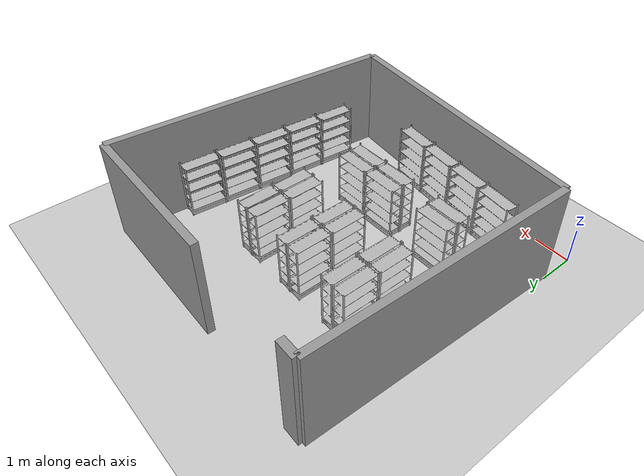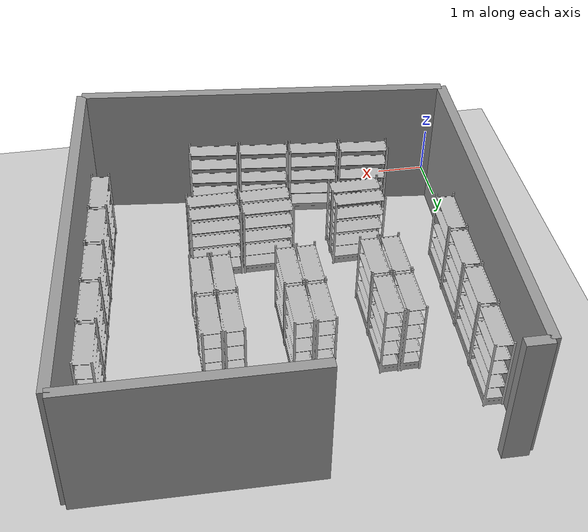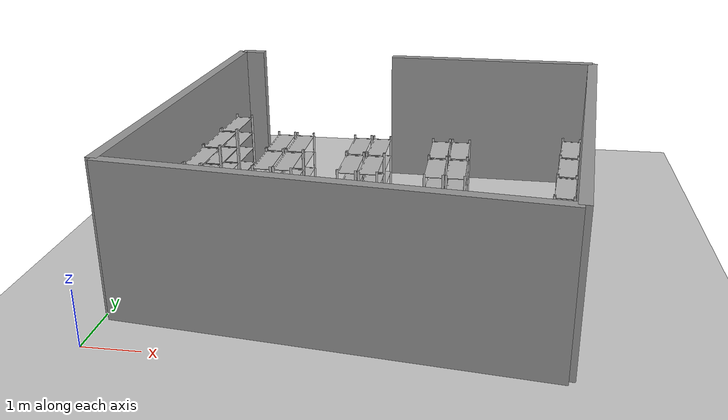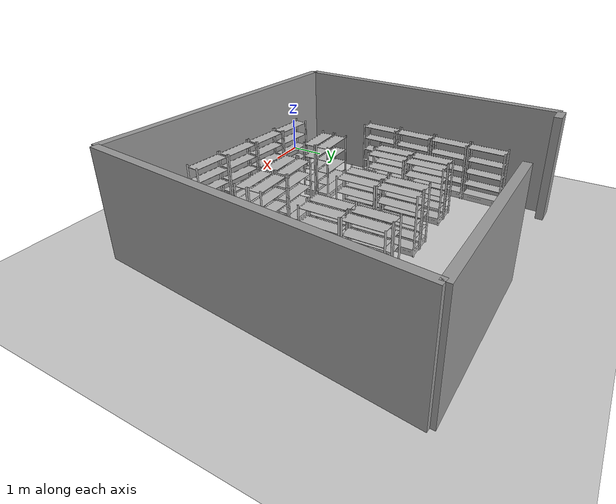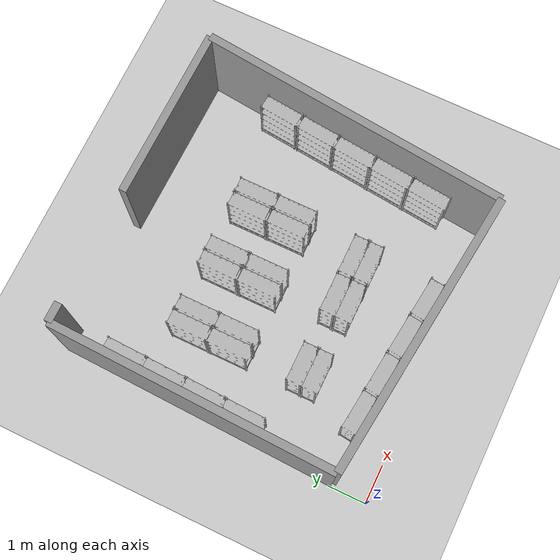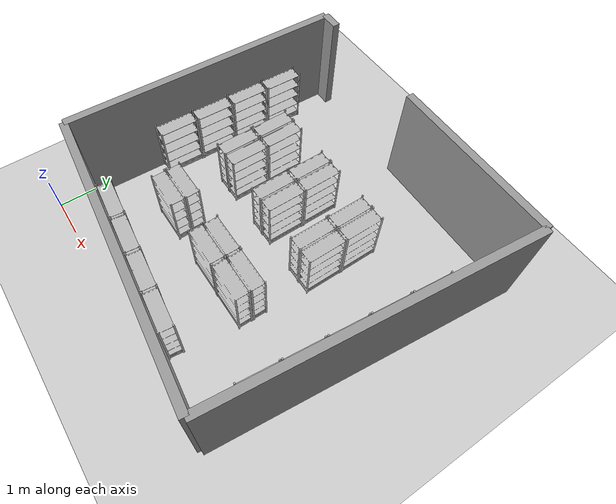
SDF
<sdf version="1.6">
  <world name="default">
    <light name="sun" type="directional">
      <cast_shadows>1</cast_shadows>
      <pose frame="">0 0 10 0 -0 0</pose>
      <diffuse>0.8 0.8 0.8 1</diffuse>
      <specular>0.2 0.2 0.2 1</specular>
      <attenuation>
        <range>1000</range>
        <constant>0.9</constant>
        <linear>0.01</linear>
        <quadratic>0.001</quadratic>
      </attenuation>
      <direction>-0.5 0.1 -0.9</direction>
    </light>
    <model name="ground_plane">
      <static>1</static>
      <link name="link">
        <collision name="collision">
          <geometry>
            <plane>
              <normal>0 0 1</normal>
              <size>100 100</size>
            </plane>
          </geometry>
          <surface>
            <contact>
              <collide_bitmask>65535</collide_bitmask>
              <ode />
            </contact>
            <friction>
              <ode>
                <mu>1000</mu>
                <mu2>1000</mu2>
              </ode>
              <torsional>
                <ode />
              </torsional>
            </friction>
            <bounce />
          </surface>
          <max_contacts>10</max_contacts>
        </collision>
        <visual name="visual">
          <cast_shadows>0</cast_shadows>
          <geometry>
            <plane>
              <normal>0 0 1</normal>
              <size>100 100</size>
            </plane>
          </geometry>
          <material>
            <script>
              <uri>file://media/materials/scripts/gazebo.material</uri>
              <name>Gazebo/Grey</name>
            </script>
          </material>
        </visual>
        <self_collide>0</self_collide>
        <enable_wind>0</enable_wind>
        <kinematic>0</kinematic>
      </link>
    </model>
    <gravity>0 0 -9.8</gravity>
    <magnetic_field>6e-06 2.3e-05 -4.2e-05</magnetic_field>
    <atmosphere type="adiabatic" />
    <physics name="default_physics" default="0" type="ode">
      <max_step_size>0.001</max_step_size>
      <real_time_factor>1</real_time_factor>
      <real_time_update_rate>1000</real_time_update_rate>
    </physics>
    <scene>
      <ambient>0.4 0.4 0.4 1</ambient>
      <background>0.7 0.7 0.7 1</background>
      <shadows>1</shadows>
    </scene>
    <audio>
      <device>default</device>
    </audio>
    <wind />
    <spherical_coordinates>
      <surface_model>EARTH_WGS84</surface_model>
      <latitude_deg>0</latitude_deg>
      <longitude_deg>0</longitude_deg>
      <elevation>0</elevation>
      <heading_deg>0</heading_deg>
    </spherical_coordinates>
    <gui fullscreen="0">
      <camera name="user_camera">
        <pose frame="">5.5458 -17.3868 19.7357 0 0.841797 1.67218</pose>
        <view_controller>orbit</view_controller>
        <projection_type>perspective</projection_type>
      </camera>
    </gui>
    <plugin name="ActorPosesPlugin" filename="libActorPosesPlugin.so" />
    <model name="store_shelf_moduled_0">
      <link name="link">
        <collision name="collision">
          <geometry>
            <mesh>
              <uri>model://store_shelf_moduled/meshes/store_shelf_moduled.dae</uri>
            </mesh>
          </geometry>
        </collision>
        <visual name="visual">
          <geometry>
            <mesh>
              <uri>model://store_shelf_moduled/meshes/store_shelf_moduled.dae</uri>
            </mesh>
          </geometry>
        </visual>
        <inertial>
          <mass>1000</mass>
          <inertia>
            <ixx>840083</ixx>
            <ixy>0</ixy>
            <ixz>0</ixz>
            <iyy>475500</iyy>
            <iyz>0</iyz>
            <izz>1.30208e+06</izz>
          </inertia>
        </inertial>
        <self_collide>0</self_collide>
        <enable_wind>0</enable_wind>
        <kinematic>0</kinematic>
      </link>
      <static>1</static>
      <pose frame="">1.161191 0.9093718 0 0 0 -0.1121462</pose>
    </model>
    <model name="store_shelf_moduled_1">
      <link name="link">
        <collision name="collision">
          <geometry>
            <mesh>
              <uri>model://store_shelf_moduled/meshes/store_shelf_moduled.dae</uri>
            </mesh>
          </geometry>
        </collision>
        <visual name="visual">
          <geometry>
            <mesh>
              <uri>model://store_shelf_moduled/meshes/store_shelf_moduled.dae</uri>
            </mesh>
          </geometry>
        </visual>
        <inertial>
          <mass>1000</mass>
          <inertia>
            <ixx>840083</ixx>
            <ixy>0</ixy>
            <ixz>0</ixz>
            <iyy>475500</iyy>
            <iyz>0</iyz>
            <izz>1.30208e+06</izz>
          </inertia>
        </inertial>
        <self_collide>0</self_collide>
        <enable_wind>0</enable_wind>
        <kinematic>0</kinematic>
      </link>
      <static>1</static>
      <pose frame="">2.211191 0.7893718 0 0 0 -0.1121462</pose>
    </model>
    <model name="store_shelf_moduled_2">
      <link name="link">
        <collision name="collision">
          <geometry>
            <mesh>
              <uri>model://store_shelf_moduled/meshes/store_shelf_moduled.dae</uri>
            </mesh>
          </geometry>
        </collision>
        <visual name="visual">
          <geometry>
            <mesh>
              <uri>model://store_shelf_moduled/meshes/store_shelf_moduled.dae</uri>
            </mesh>
          </geometry>
        </visual>
        <inertial>
          <mass>1000</mass>
          <inertia>
            <ixx>840083</ixx>
            <ixy>0</ixy>
            <ixz>0</ixz>
            <iyy>475500</iyy>
            <iyz>0</iyz>
            <izz>1.30208e+06</izz>
          </inertia>
        </inertial>
        <self_collide>0</self_collide>
        <enable_wind>0</enable_wind>
        <kinematic>0</kinematic>
      </link>
      <static>1</static>
      <pose frame="">3.271191 0.6693718 0 0 0 -0.1121462</pose>
    </model>
    <model name="store_shelf_moduled_3">
      <link name="link">
        <collision name="collision">
          <geometry>
            <mesh>
              <uri>model://store_shelf_moduled/meshes/store_shelf_moduled.dae</uri>
            </mesh>
          </geometry>
        </collision>
        <visual name="visual">
          <geometry>
            <mesh>
              <uri>model://store_shelf_moduled/meshes/store_shelf_moduled.dae</uri>
            </mesh>
          </geometry>
        </visual>
        <inertial>
          <mass>1000</mass>
          <inertia>
            <ixx>840083</ixx>
            <ixy>0</ixy>
            <ixz>0</ixz>
            <iyy>475500</iyy>
            <iyz>0</iyz>
            <izz>1.30208e+06</izz>
          </inertia>
        </inertial>
        <self_collide>0</self_collide>
        <enable_wind>0</enable_wind>
        <kinematic>0</kinematic>
      </link>
      <static>1</static>
      <pose frame="">4.321191 0.5493718 0 0 0 -0.1121462</pose>
    </model>
    <model name="store_shelf_moduled_4">
      <link name="link">
        <collision name="collision">
          <geometry>
            <mesh>
              <uri>model://store_shelf_moduled/meshes/store_shelf_moduled.dae</uri>
            </mesh>
          </geometry>
        </collision>
        <visual name="visual">
          <geometry>
            <mesh>
              <uri>model://store_shelf_moduled/meshes/store_shelf_moduled.dae</uri>
            </mesh>
          </geometry>
        </visual>
        <inertial>
          <mass>1000</mass>
          <inertia>
            <ixx>840083</ixx>
            <ixy>0</ixy>
            <ixz>0</ixz>
            <iyy>475500</iyy>
            <iyz>0</iyz>
            <izz>1.30208e+06</izz>
          </inertia>
        </inertial>
        <self_collide>0</self_collide>
        <enable_wind>0</enable_wind>
        <kinematic>0</kinematic>
      </link>
      <static>1</static>
      <pose frame="">7.470521 1.160197 0 0 0 1.468653</pose>
    </model>
    <model name="store_shelf_moduled_5">
      <link name="link">
        <collision name="collision">
          <geometry>
            <mesh>
              <uri>model://store_shelf_moduled/meshes/store_shelf_moduled.dae</uri>
            </mesh>
          </geometry>
        </collision>
        <visual name="visual">
          <geometry>
            <mesh>
              <uri>model://store_shelf_moduled/meshes/store_shelf_moduled.dae</uri>
            </mesh>
          </geometry>
        </visual>
        <inertial>
          <mass>1000</mass>
          <inertia>
            <ixx>840083</ixx>
            <ixy>0</ixy>
            <ixz>0</ixz>
            <iyy>475500</iyy>
            <iyz>0</iyz>
            <izz>1.30208e+06</izz>
          </inertia>
        </inertial>
        <self_collide>0</self_collide>
        <enable_wind>0</enable_wind>
        <kinematic>0</kinematic>
      </link>
      <static>1</static>
      <pose frame="">7.580521 2.210196 0 0 0 1.468653</pose>
    </model>
    <model name="store_shelf_moduled_6">
      <link name="link">
        <collision name="collision">
          <geometry>
            <mesh>
              <uri>model://store_shelf_moduled/meshes/store_shelf_moduled.dae</uri>
            </mesh>
          </geometry>
        </collision>
        <visual name="visual">
          <geometry>
            <mesh>
              <uri>model://store_shelf_moduled/meshes/store_shelf_moduled.dae</uri>
            </mesh>
          </geometry>
        </visual>
        <inertial>
          <mass>1000</mass>
          <inertia>
            <ixx>840083</ixx>
            <ixy>0</ixy>
            <ixz>0</ixz>
            <iyy>475500</iyy>
            <iyz>0</iyz>
            <izz>1.30208e+06</izz>
          </inertia>
        </inertial>
        <self_collide>0</self_collide>
        <enable_wind>0</enable_wind>
        <kinematic>0</kinematic>
      </link>
      <static>1</static>
      <pose frame="">7.690521 3.270196 0 0 0 1.468653</pose>
    </model>
    <model name="store_shelf_moduled_7">
      <link name="link">
        <collision name="collision">
          <geometry>
            <mesh>
              <uri>model://store_shelf_moduled/meshes/store_shelf_moduled.dae</uri>
            </mesh>
          </geometry>
        </collision>
        <visual name="visual">
          <geometry>
            <mesh>
              <uri>model://store_shelf_moduled/meshes/store_shelf_moduled.dae</uri>
            </mesh>
          </geometry>
        </visual>
        <inertial>
          <mass>1000</mass>
          <inertia>
            <ixx>840083</ixx>
            <ixy>0</ixy>
            <ixz>0</ixz>
            <iyy>475500</iyy>
            <iyz>0</iyz>
            <izz>1.30208e+06</izz>
          </inertia>
        </inertial>
        <self_collide>0</self_collide>
        <enable_wind>0</enable_wind>
        <kinematic>0</kinematic>
      </link>
      <static>1</static>
      <pose frame="">7.800521 4.320197 0 0 0 1.468653</pose>
    </model>
    <model name="store_shelf_moduled_8">
      <link name="link">
        <collision name="collision">
          <geometry>
            <mesh>
              <uri>model://store_shelf_moduled/meshes/store_shelf_moduled.dae</uri>
            </mesh>
          </geometry>
        </collision>
        <visual name="visual">
          <geometry>
            <mesh>
              <uri>model://store_shelf_moduled/meshes/store_shelf_moduled.dae</uri>
            </mesh>
          </geometry>
        </visual>
        <inertial>
          <mass>1000</mass>
          <inertia>
            <ixx>840083</ixx>
            <ixy>0</ixy>
            <ixz>0</ixz>
            <iyy>475500</iyy>
            <iyz>0</iyz>
            <izz>1.30208e+06</izz>
          </inertia>
        </inertial>
        <self_collide>0</self_collide>
        <enable_wind>0</enable_wind>
        <kinematic>0</kinematic>
      </link>
      <static>1</static>
      <pose frame="">7.910521 5.380197 0 0 0 1.468653</pose>
    </model>
    <model name="store_shelf_moduled_9">
      <link name="link">
        <collision name="collision">
          <geometry>
            <mesh>
              <uri>model://store_shelf_moduled/meshes/store_shelf_moduled.dae</uri>
            </mesh>
          </geometry>
        </collision>
        <visual name="visual">
          <geometry>
            <mesh>
              <uri>model://store_shelf_moduled/meshes/store_shelf_moduled.dae</uri>
            </mesh>
          </geometry>
        </visual>
        <inertial>
          <mass>1000</mass>
          <inertia>
            <ixx>840083</ixx>
            <ixy>0</ixy>
            <ixz>0</ixz>
            <iyy>475500</iyy>
            <iyz>0</iyz>
            <izz>1.30208e+06</izz>
          </inertia>
        </inertial>
        <self_collide>0</self_collide>
        <enable_wind>0</enable_wind>
        <kinematic>0</kinematic>
      </link>
      <static>1</static>
      <pose frame="">0.4099419 7.196591 0 0 0 -1.60489</pose>
    </model>
    <model name="store_shelf_moduled_10">
      <link name="link">
        <collision name="collision">
          <geometry>
            <mesh>
              <uri>model://store_shelf_moduled/meshes/store_shelf_moduled.dae</uri>
            </mesh>
          </geometry>
        </collision>
        <visual name="visual">
          <geometry>
            <mesh>
              <uri>model://store_shelf_moduled/meshes/store_shelf_moduled.dae</uri>
            </mesh>
          </geometry>
        </visual>
        <inertial>
          <mass>1000</mass>
          <inertia>
            <ixx>840083</ixx>
            <ixy>0</ixy>
            <ixz>0</ixz>
            <iyy>475500</iyy>
            <iyz>0</iyz>
            <izz>1.30208e+06</izz>
          </inertia>
        </inertial>
        <self_collide>0</self_collide>
        <enable_wind>0</enable_wind>
        <kinematic>0</kinematic>
      </link>
      <static>1</static>
      <pose frame="">0.3699419 6.136591 0 0 0 -1.60489</pose>
    </model>
    <model name="store_shelf_moduled_11">
      <link name="link">
        <collision name="collision">
          <geometry>
            <mesh>
              <uri>model://store_shelf_moduled/meshes/store_shelf_moduled.dae</uri>
            </mesh>
          </geometry>
        </collision>
        <visual name="visual">
          <geometry>
            <mesh>
              <uri>model://store_shelf_moduled/meshes/store_shelf_moduled.dae</uri>
            </mesh>
          </geometry>
        </visual>
        <inertial>
          <mass>1000</mass>
          <inertia>
            <ixx>840083</ixx>
            <ixy>0</ixy>
            <ixz>0</ixz>
            <iyy>475500</iyy>
            <iyz>0</iyz>
            <izz>1.30208e+06</izz>
          </inertia>
        </inertial>
        <self_collide>0</self_collide>
        <enable_wind>0</enable_wind>
        <kinematic>0</kinematic>
      </link>
      <static>1</static>
      <pose frame="">0.3399419 5.076591 0 0 0 -1.60489</pose>
    </model>
    <model name="store_shelf_moduled_12">
      <link name="link">
        <collision name="collision">
          <geometry>
            <mesh>
              <uri>model://store_shelf_moduled/meshes/store_shelf_moduled.dae</uri>
            </mesh>
          </geometry>
        </collision>
        <visual name="visual">
          <geometry>
            <mesh>
              <uri>model://store_shelf_moduled/meshes/store_shelf_moduled.dae</uri>
            </mesh>
          </geometry>
        </visual>
        <inertial>
          <mass>1000</mass>
          <inertia>
            <ixx>840083</ixx>
            <ixy>0</ixy>
            <ixz>0</ixz>
            <iyy>475500</iyy>
            <iyz>0</iyz>
            <izz>1.30208e+06</izz>
          </inertia>
        </inertial>
        <self_collide>0</self_collide>
        <enable_wind>0</enable_wind>
        <kinematic>0</kinematic>
      </link>
      <static>1</static>
      <pose frame="">0.2999419 4.016592 0 0 0 -1.60489</pose>
    </model>
    <model name="store_shelf_moduled_13">
      <link name="link">
        <collision name="collision">
          <geometry>
            <mesh>
              <uri>model://store_shelf_moduled/meshes/store_shelf_moduled.dae</uri>
            </mesh>
          </geometry>
        </collision>
        <visual name="visual">
          <geometry>
            <mesh>
              <uri>model://store_shelf_moduled/meshes/store_shelf_moduled.dae</uri>
            </mesh>
          </geometry>
        </visual>
        <inertial>
          <mass>1000</mass>
          <inertia>
            <ixx>840083</ixx>
            <ixy>0</ixy>
            <ixz>0</ixz>
            <iyy>475500</iyy>
            <iyz>0</iyz>
            <izz>1.30208e+06</izz>
          </inertia>
        </inertial>
        <self_collide>0</self_collide>
        <enable_wind>0</enable_wind>
        <kinematic>0</kinematic>
      </link>
      <static>1</static>
      <pose frame="">3.71 3.98 0 0 0 1.570796</pose>
    </model>
    <model name="store_shelf_moduled_14">
      <link name="link">
        <collision name="collision">
          <geometry>
            <mesh>
              <uri>model://store_shelf_moduled/meshes/store_shelf_moduled.dae</uri>
            </mesh>
          </geometry>
        </collision>
        <visual name="visual">
          <geometry>
            <mesh>
              <uri>model://store_shelf_moduled/meshes/store_shelf_moduled.dae</uri>
            </mesh>
          </geometry>
        </visual>
        <inertial>
          <mass>1000</mass>
          <inertia>
            <ixx>840083</ixx>
            <ixy>0</ixy>
            <ixz>0</ixz>
            <iyy>475500</iyy>
            <iyz>0</iyz>
            <izz>1.30208e+06</izz>
          </inertia>
        </inertial>
        <self_collide>0</self_collide>
        <enable_wind>0</enable_wind>
        <kinematic>0</kinematic>
      </link>
      <static>1</static>
      <pose frame="">3.71 5.04 0 0 0 -1.570796</pose>
    </model>
    <model name="store_shelf_moduled_15">
      <link name="link">
        <collision name="collision">
          <geometry>
            <mesh>
              <uri>model://store_shelf_moduled/meshes/store_shelf_moduled.dae</uri>
            </mesh>
          </geometry>
        </collision>
        <visual name="visual">
          <geometry>
            <mesh>
              <uri>model://store_shelf_moduled/meshes/store_shelf_moduled.dae</uri>
            </mesh>
          </geometry>
        </visual>
        <inertial>
          <mass>1000</mass>
          <inertia>
            <ixx>840083</ixx>
            <ixy>0</ixy>
            <ixz>0</ixz>
            <iyy>475500</iyy>
            <iyz>0</iyz>
            <izz>1.30208e+06</izz>
          </inertia>
        </inertial>
        <self_collide>0</self_collide>
        <enable_wind>0</enable_wind>
        <kinematic>0</kinematic>
      </link>
      <static>1</static>
      <pose frame="">3.71 5.04 0 0 0 1.570796</pose>
    </model>
    <model name="store_shelf_moduled_16">
      <link name="link">
        <collision name="collision">
          <geometry>
            <mesh>
              <uri>model://store_shelf_moduled/meshes/store_shelf_moduled.dae</uri>
            </mesh>
          </geometry>
        </collision>
        <visual name="visual">
          <geometry>
            <mesh>
              <uri>model://store_shelf_moduled/meshes/store_shelf_moduled.dae</uri>
            </mesh>
          </geometry>
        </visual>
        <inertial>
          <mass>1000</mass>
          <inertia>
            <ixx>840083</ixx>
            <ixy>0</ixy>
            <ixz>0</ixz>
            <iyy>475500</iyy>
            <iyz>0</iyz>
            <izz>1.30208e+06</izz>
          </inertia>
        </inertial>
        <self_collide>0</self_collide>
        <enable_wind>0</enable_wind>
        <kinematic>0</kinematic>
      </link>
      <static>1</static>
      <pose frame="">3.71 6.1 0 0 0 -1.570796</pose>
    </model>
    <model name="store_shelf_moduled_17">
      <link name="link">
        <collision name="collision">
          <geometry>
            <mesh>
              <uri>model://store_shelf_moduled/meshes/store_shelf_moduled.dae</uri>
            </mesh>
          </geometry>
        </collision>
        <visual name="visual">
          <geometry>
            <mesh>
              <uri>model://store_shelf_moduled/meshes/store_shelf_moduled.dae</uri>
            </mesh>
          </geometry>
        </visual>
        <inertial>
          <mass>1000</mass>
          <inertia>
            <ixx>840083</ixx>
            <ixy>0</ixy>
            <ixz>0</ixz>
            <iyy>475500</iyy>
            <iyz>0</iyz>
            <izz>1.30208e+06</izz>
          </inertia>
        </inertial>
        <self_collide>0</self_collide>
        <enable_wind>0</enable_wind>
        <kinematic>0</kinematic>
      </link>
      <static>1</static>
      <pose frame="">3.51 2.54 0 0 0 0</pose>
    </model>
    <model name="store_shelf_moduled_18">
      <link name="link">
        <collision name="collision">
          <geometry>
            <mesh>
              <uri>model://store_shelf_moduled/meshes/store_shelf_moduled.dae</uri>
            </mesh>
          </geometry>
        </collision>
        <visual name="visual">
          <geometry>
            <mesh>
              <uri>model://store_shelf_moduled/meshes/store_shelf_moduled.dae</uri>
            </mesh>
          </geometry>
        </visual>
        <inertial>
          <mass>1000</mass>
          <inertia>
            <ixx>840083</ixx>
            <ixy>0</ixy>
            <ixz>0</ixz>
            <iyy>475500</iyy>
            <iyz>0</iyz>
            <izz>1.30208e+06</izz>
          </inertia>
        </inertial>
        <self_collide>0</self_collide>
        <enable_wind>0</enable_wind>
        <kinematic>0</kinematic>
      </link>
      <static>1</static>
      <pose frame="">4.57 2.54 0 0 0 -3.141593</pose>
    </model>
    <model name="store_shelf_moduled_19">
      <link name="link">
        <collision name="collision">
          <geometry>
            <mesh>
              <uri>model://store_shelf_moduled/meshes/store_shelf_moduled.dae</uri>
            </mesh>
          </geometry>
        </collision>
        <visual name="visual">
          <geometry>
            <mesh>
              <uri>model://store_shelf_moduled/meshes/store_shelf_moduled.dae</uri>
            </mesh>
          </geometry>
        </visual>
        <inertial>
          <mass>1000</mass>
          <inertia>
            <ixx>840083</ixx>
            <ixy>0</ixy>
            <ixz>0</ixz>
            <iyy>475500</iyy>
            <iyz>0</iyz>
            <izz>1.30208e+06</izz>
          </inertia>
        </inertial>
        <self_collide>0</self_collide>
        <enable_wind>0</enable_wind>
        <kinematic>0</kinematic>
      </link>
      <static>1</static>
      <pose frame="">4.57 2.54 0 0 0 0</pose>
    </model>
    <model name="store_shelf_moduled_20">
      <link name="link">
        <collision name="collision">
          <geometry>
            <mesh>
              <uri>model://store_shelf_moduled/meshes/store_shelf_moduled.dae</uri>
            </mesh>
          </geometry>
        </collision>
        <visual name="visual">
          <geometry>
            <mesh>
              <uri>model://store_shelf_moduled/meshes/store_shelf_moduled.dae</uri>
            </mesh>
          </geometry>
        </visual>
        <inertial>
          <mass>1000</mass>
          <inertia>
            <ixx>840083</ixx>
            <ixy>0</ixy>
            <ixz>0</ixz>
            <iyy>475500</iyy>
            <iyz>0</iyz>
            <izz>1.30208e+06</izz>
          </inertia>
        </inertial>
        <self_collide>0</self_collide>
        <enable_wind>0</enable_wind>
        <kinematic>0</kinematic>
      </link>
      <static>1</static>
      <pose frame="">5.63 2.54 0 0 0 -3.141593</pose>
    </model>
    <model name="store_shelf_moduled_21">
      <link name="link">
        <collision name="collision">
          <geometry>
            <mesh>
              <uri>model://store_shelf_moduled/meshes/store_shelf_moduled.dae</uri>
            </mesh>
          </geometry>
        </collision>
        <visual name="visual">
          <geometry>
            <mesh>
              <uri>model://store_shelf_moduled/meshes/store_shelf_moduled.dae</uri>
            </mesh>
          </geometry>
        </visual>
        <inertial>
          <mass>1000</mass>
          <inertia>
            <ixx>840083</ixx>
            <ixy>0</ixy>
            <ixz>0</ixz>
            <iyy>475500</iyy>
            <iyz>0</iyz>
            <izz>1.30208e+06</izz>
          </inertia>
        </inertial>
        <self_collide>0</self_collide>
        <enable_wind>0</enable_wind>
        <kinematic>0</kinematic>
      </link>
      <static>1</static>
      <pose frame="">5.35 3.98 0 0 0 1.570796</pose>
    </model>
    <model name="store_shelf_moduled_22">
      <link name="link">
        <collision name="collision">
          <geometry>
            <mesh>
              <uri>model://store_shelf_moduled/meshes/store_shelf_moduled.dae</uri>
            </mesh>
          </geometry>
        </collision>
        <visual name="visual">
          <geometry>
            <mesh>
              <uri>model://store_shelf_moduled/meshes/store_shelf_moduled.dae</uri>
            </mesh>
          </geometry>
        </visual>
        <inertial>
          <mass>1000</mass>
          <inertia>
            <ixx>840083</ixx>
            <ixy>0</ixy>
            <ixz>0</ixz>
            <iyy>475500</iyy>
            <iyz>0</iyz>
            <izz>1.30208e+06</izz>
          </inertia>
        </inertial>
        <self_collide>0</self_collide>
        <enable_wind>0</enable_wind>
        <kinematic>0</kinematic>
      </link>
      <static>1</static>
      <pose frame="">5.35 5.04 0 0 0 -1.570796</pose>
    </model>
    <model name="store_shelf_moduled_23">
      <link name="link">
        <collision name="collision">
          <geometry>
            <mesh>
              <uri>model://store_shelf_moduled/meshes/store_shelf_moduled.dae</uri>
            </mesh>
          </geometry>
        </collision>
        <visual name="visual">
          <geometry>
            <mesh>
              <uri>model://store_shelf_moduled/meshes/store_shelf_moduled.dae</uri>
            </mesh>
          </geometry>
        </visual>
        <inertial>
          <mass>1000</mass>
          <inertia>
            <ixx>840083</ixx>
            <ixy>0</ixy>
            <ixz>0</ixz>
            <iyy>475500</iyy>
            <iyz>0</iyz>
            <izz>1.30208e+06</izz>
          </inertia>
        </inertial>
        <self_collide>0</self_collide>
        <enable_wind>0</enable_wind>
        <kinematic>0</kinematic>
      </link>
      <static>1</static>
      <pose frame="">5.35 5.04 0 0 0 1.570796</pose>
    </model>
    <model name="store_shelf_moduled_24">
      <link name="link">
        <collision name="collision">
          <geometry>
            <mesh>
              <uri>model://store_shelf_moduled/meshes/store_shelf_moduled.dae</uri>
            </mesh>
          </geometry>
        </collision>
        <visual name="visual">
          <geometry>
            <mesh>
              <uri>model://store_shelf_moduled/meshes/store_shelf_moduled.dae</uri>
            </mesh>
          </geometry>
        </visual>
        <inertial>
          <mass>1000</mass>
          <inertia>
            <ixx>840083</ixx>
            <ixy>0</ixy>
            <ixz>0</ixz>
            <iyy>475500</iyy>
            <iyz>0</iyz>
            <izz>1.30208e+06</izz>
          </inertia>
        </inertial>
        <self_collide>0</self_collide>
        <enable_wind>0</enable_wind>
        <kinematic>0</kinematic>
      </link>
      <static>1</static>
      <pose frame="">5.35 6.1 0 0 0 -1.570796</pose>
    </model>
    <model name="store_shelf_moduled_25">
      <link name="link">
        <collision name="collision">
          <geometry>
            <mesh>
              <uri>model://store_shelf_moduled/meshes/store_shelf_moduled.dae</uri>
            </mesh>
          </geometry>
        </collision>
        <visual name="visual">
          <geometry>
            <mesh>
              <uri>model://store_shelf_moduled/meshes/store_shelf_moduled.dae</uri>
            </mesh>
          </geometry>
        </visual>
        <inertial>
          <mass>1000</mass>
          <inertia>
            <ixx>840083</ixx>
            <ixy>0</ixy>
            <ixz>0</ixz>
            <iyy>475500</iyy>
            <iyz>0</iyz>
            <izz>1.30208e+06</izz>
          </inertia>
        </inertial>
        <self_collide>0</self_collide>
        <enable_wind>0</enable_wind>
        <kinematic>0</kinematic>
      </link>
      <static>1</static>
      <pose frame="">1.65 2.54 0 0 0 0</pose>
    </model>
    <model name="store_shelf_moduled_26">
      <link name="link">
        <collision name="collision">
          <geometry>
            <mesh>
              <uri>model://store_shelf_moduled/meshes/store_shelf_moduled.dae</uri>
            </mesh>
          </geometry>
        </collision>
        <visual name="visual">
          <geometry>
            <mesh>
              <uri>model://store_shelf_moduled/meshes/store_shelf_moduled.dae</uri>
            </mesh>
          </geometry>
        </visual>
        <inertial>
          <mass>1000</mass>
          <inertia>
            <ixx>840083</ixx>
            <ixy>0</ixy>
            <ixz>0</ixz>
            <iyy>475500</iyy>
            <iyz>0</iyz>
            <izz>1.30208e+06</izz>
          </inertia>
        </inertial>
        <self_collide>0</self_collide>
        <enable_wind>0</enable_wind>
        <kinematic>0</kinematic>
      </link>
      <static>1</static>
      <pose frame="">2.71 2.54 0 0 0 -3.141593</pose>
    </model>
    <model name="store_shelf_moduled_27">
      <link name="link">
        <collision name="collision">
          <geometry>
            <mesh>
              <uri>model://store_shelf_moduled/meshes/store_shelf_moduled.dae</uri>
            </mesh>
          </geometry>
        </collision>
        <visual name="visual">
          <geometry>
            <mesh>
              <uri>model://store_shelf_moduled/meshes/store_shelf_moduled.dae</uri>
            </mesh>
          </geometry>
        </visual>
        <inertial>
          <mass>1000</mass>
          <inertia>
            <ixx>840083</ixx>
            <ixy>0</ixy>
            <ixz>0</ixz>
            <iyy>475500</iyy>
            <iyz>0</iyz>
            <izz>1.30208e+06</izz>
          </inertia>
        </inertial>
        <self_collide>0</self_collide>
        <enable_wind>0</enable_wind>
        <kinematic>0</kinematic>
      </link>
      <static>1</static>
      <pose frame="">2.07 3.98 0 0 0 1.570796</pose>
    </model>
    <model name="store_shelf_moduled_28">
      <link name="link">
        <collision name="collision">
          <geometry>
            <mesh>
              <uri>model://store_shelf_moduled/meshes/store_shelf_moduled.dae</uri>
            </mesh>
          </geometry>
        </collision>
        <visual name="visual">
          <geometry>
            <mesh>
              <uri>model://store_shelf_moduled/meshes/store_shelf_moduled.dae</uri>
            </mesh>
          </geometry>
        </visual>
        <inertial>
          <mass>1000</mass>
          <inertia>
            <ixx>840083</ixx>
            <ixy>0</ixy>
            <ixz>0</ixz>
            <iyy>475500</iyy>
            <iyz>0</iyz>
            <izz>1.30208e+06</izz>
          </inertia>
        </inertial>
        <self_collide>0</self_collide>
        <enable_wind>0</enable_wind>
        <kinematic>0</kinematic>
      </link>
      <static>1</static>
      <pose frame="">2.07 5.04 0 0 0 -1.570796</pose>
    </model>
    <model name="store_shelf_moduled_29">
      <link name="link">
        <collision name="collision">
          <geometry>
            <mesh>
              <uri>model://store_shelf_moduled/meshes/store_shelf_moduled.dae</uri>
            </mesh>
          </geometry>
        </collision>
        <visual name="visual">
          <geometry>
            <mesh>
              <uri>model://store_shelf_moduled/meshes/store_shelf_moduled.dae</uri>
            </mesh>
          </geometry>
        </visual>
        <inertial>
          <mass>1000</mass>
          <inertia>
            <ixx>840083</ixx>
            <ixy>0</ixy>
            <ixz>0</ixz>
            <iyy>475500</iyy>
            <iyz>0</iyz>
            <izz>1.30208e+06</izz>
          </inertia>
        </inertial>
        <self_collide>0</self_collide>
        <enable_wind>0</enable_wind>
        <kinematic>0</kinematic>
      </link>
      <static>1</static>
      <pose frame="">2.07 5.04 0 0 0 1.570796</pose>
    </model>
    <model name="store_shelf_moduled_30">
      <link name="link">
        <collision name="collision">
          <geometry>
            <mesh>
              <uri>model://store_shelf_moduled/meshes/store_shelf_moduled.dae</uri>
            </mesh>
          </geometry>
        </collision>
        <visual name="visual">
          <geometry>
            <mesh>
              <uri>model://store_shelf_moduled/meshes/store_shelf_moduled.dae</uri>
            </mesh>
          </geometry>
        </visual>
        <inertial>
          <mass>1000</mass>
          <inertia>
            <ixx>840083</ixx>
            <ixy>0</ixy>
            <ixz>0</ixz>
            <iyy>475500</iyy>
            <iyz>0</iyz>
            <izz>1.30208e+06</izz>
          </inertia>
        </inertial>
        <self_collide>0</self_collide>
        <enable_wind>0</enable_wind>
        <kinematic>0</kinematic>
      </link>
      <static>1</static>
      <pose frame="">2.07 6.1 0 0 0 -1.570796</pose>
    </model>
    <model name="grey_wall0">
      <static>1</static>
      <link name="link">
        <pose frame="">3.785 0.515 1.4 0 0 -0.1121462</pose>
        <visual name="visual">
          <cast_shadows>0</cast_shadows>
          <geometry>
            <box>
              <size>7.416589 0.2 2.8</size>
            </box>
          </geometry>
          <material>
            <name>vrc/grey_wall</name>
            <script>
              <uri>model://grey_wall/materials/scripts</uri>
              <uri>model://grey_wall/materials/textures</uri>
              <name>vrc/grey_wall</name>
            </script>
          </material>
        </visual>
        <collision name="collision">
          <geometry>
            <box>
              <size>7.416589 0.2 2.8</size>
            </box>
          </geometry>
          <max_contacts>5</max_contacts>
        </collision>
      </link>
    </model>
    <model name="grey_wall1">
      <static>1</static>
      <link name="link">
        <pose frame="">7.88 4.1 1.4 0 0 1.468653</pose>
        <visual name="visual">
          <cast_shadows>0</cast_shadows>
          <geometry>
            <box>
              <size>8.041915 0.2 2.8</size>
            </box>
          </geometry>
          <material>
            <name>vrc/grey_wall</name>
            <script>
              <uri>model://grey_wall/materials/scripts</uri>
              <uri>model://grey_wall/materials/textures</uri>
              <name>vrc/grey_wall</name>
            </script>
          </material>
        </visual>
        <collision name="collision">
          <geometry>
            <box>
              <size>8.041915 0.2 2.8</size>
            </box>
          </geometry>
          <max_contacts>5</max_contacts>
        </collision>
      </link>
    </model>
    <model name="grey_wall2">
      <static>1</static>
      <link name="link">
        <pose frame="">6.07 8.145 1.4 0 0 3.121325</pose>
        <visual name="visual">
          <cast_shadows>0</cast_shadows>
          <geometry>
            <box>
              <size>4.440912 0.2 2.8</size>
            </box>
          </geometry>
          <material>
            <name>vrc/grey_wall</name>
            <script>
              <uri>model://grey_wall/materials/scripts</uri>
              <uri>model://grey_wall/materials/textures</uri>
              <name>vrc/grey_wall</name>
            </script>
          </material>
        </visual>
        <collision name="collision">
          <geometry>
            <box>
              <size>4.440912 0.2 2.8</size>
            </box>
          </geometry>
          <max_contacts>5</max_contacts>
        </collision>
      </link>
    </model>
    <model name="grey_wall3">
      <static>1</static>
      <link name="link">
        <pose frame="">0.6 8.255 1.4 0 0 3.121595</pose>
        <visual name="visual">
          <cast_shadows>0</cast_shadows>
          <geometry>
            <box>
              <size>0.5001 0.2 2.8</size>
            </box>
          </geometry>
          <material>
            <name>vrc/grey_wall</name>
            <script>
              <uri>model://grey_wall/materials/scripts</uri>
              <uri>model://grey_wall/materials/textures</uri>
              <name>vrc/grey_wall</name>
            </script>
          </material>
        </visual>
        <collision name="collision">
          <geometry>
            <box>
              <size>0.5001 0.2 2.8</size>
            </box>
          </geometry>
          <max_contacts>5</max_contacts>
        </collision>
      </link>
    </model>
    <model name="grey_wall4">
      <static>1</static>
      <link name="link">
        <pose frame="">0.225 4.595 1.4 0 0 -1.60489</pose>
        <visual name="visual">
          <cast_shadows>0</cast_shadows>
          <geometry>
            <box>
              <size>7.334262 0.2 2.8</size>
            </box>
          </geometry>
          <material>
            <name>vrc/grey_wall</name>
            <script>
              <uri>model://grey_wall/materials/scripts</uri>
              <uri>model://grey_wall/materials/textures</uri>
              <name>vrc/grey_wall</name>
            </script>
          </material>
        </visual>
        <collision name="collision">
          <geometry>
            <box>
              <size>7.334262 0.2 2.8</size>
            </box>
          </geometry>
          <max_contacts>5</max_contacts>
        </collision>
      </link>
    </model>
  </world>
</sdf>
